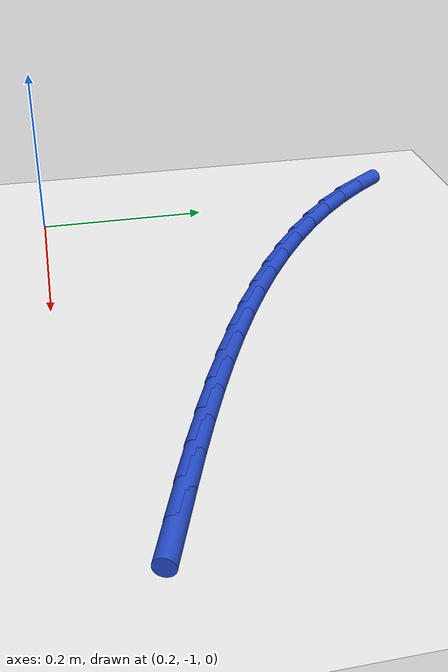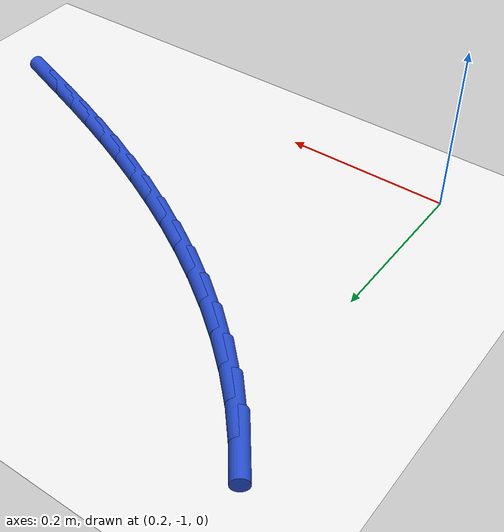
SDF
<sdf version="1.6">
 <world name="default">
  <model name="ground_plane">
   <static>1</static>
   <link name="link">
    <collision name="collision">
     <geometry><plane><normal>0 0 1</normal><size>100 100</size></plane></geometry>
     <surface><friction><ode><mu>100</mu><mu2>50</mu2></ode></friction></surface>
    </collision>
    <visual name="visual">
     <cast_shadows>0</cast_shadows>
     <geometry><plane><normal>0 0 1</normal><size>100 100</size></plane></geometry>
     <material>
      <script><uri>file://media/materials/scripts/gazebo.material</uri><name>Gazebo/WhiteGlow</name></script>
     </material>
    </visual>
   </link>
  </model>
  <model name="line">
   <link name="link_171">
    <pose>0.7386163495474699 -0.9179081848390297 0.01 0 1.57 -0.3561900177288039</pose>
    <collision name="collision">
     <geometry><cylinder><radius>0.01</radius><length>0.08</length></cylinder></geometry>
    </collision>
    <visual name="visual">
     <material>
      <script><name>Gazebo/Blue</name><uri>file://media/materials/scripts/gazebo.material</uri></script>
     </material>
     <geometry><cylinder><radius>0.01</radius><length>0.08</length></cylinder></geometry>
    </visual>
   </link>
   <link name="link_172">
    <pose>0.6992136978584467 -0.903248062521827 0.01 0 1.57 -0.36301224592770087</pose>
    <collision name="collision">
     <geometry><cylinder><radius>0.01</radius><length>0.08</length></cylinder></geometry>
    </collision>
    <visual name="visual">
     <material>
      <script><name>Gazebo/Blue</name><uri>file://media/materials/scripts/gazebo.material</uri></script>
     </material>
     <geometry><cylinder><radius>0.01</radius><length>0.08</length></cylinder></geometry>
    </visual>
   </link>
   <link name="link_173">
    <pose>0.6594850230434494 -0.8881572928912796 0.01 0 1.57 -0.37940273948285447</pose>
    <collision name="collision">
     <geometry><cylinder><radius>0.01</radius><length>0.08</length></cylinder></geometry>
    </collision>
    <visual name="visual">
     <material>
      <script><name>Gazebo/Blue</name><uri>file://media/materials/scripts/gazebo.material</uri></script>
     </material>
     <geometry><cylinder><radius>0.01</radius><length>0.08</length></cylinder></geometry>
    </visual>
   </link>
   <link name="link_174">
    <pose>0.6192859026107984 -0.8721290857341082 0.01 0 1.57 -0.3989350269945376</pose>
    <collision name="collision">
     <geometry><cylinder><radius>0.01</radius><length>0.08</length></cylinder></geometry>
    </collision>
    <visual name="visual">
     <material>
      <script><name>Gazebo/Blue</name><uri>file://media/materials/scripts/gazebo.material</uri></script>
     </material>
     <geometry><cylinder><radius>0.01</radius><length>0.08</length></cylinder></geometry>
    </visual>
   </link>
   <link name="link_175">
    <pose>0.5788399563995906 -0.8550795645854045 0.01 0 1.57 -0.421646008701253</pose>
    <collision name="collision">
     <geometry><cylinder><radius>0.01</radius><length>0.08</length></cylinder></geometry>
    </collision>
    <visual name="visual">
     <material>
      <script><name>Gazebo/Blue</name><uri>file://media/materials/scripts/gazebo.material</uri></script>
     </material>
     <geometry><cylinder><radius>0.01</radius><length>0.08</length></cylinder></geometry>
    </visual>
   </link>
   <link name="link_176">
    <pose>0.5383741495359913 -0.8369286970160555 0.01 0 1.57 -0.44768286511011907</pose>
    <collision name="collision">
     <geometry><cylinder><radius>0.01</radius><length>0.08</length></cylinder></geometry>
    </collision>
    <visual name="visual">
     <material>
      <script><name>Gazebo/Blue</name><uri>file://media/materials/scripts/gazebo.material</uri></script>
     </material>
     <geometry><cylinder><radius>0.01</radius><length>0.08</length></cylinder></geometry>
    </visual>
   </link>
   <link name="link_177">
    <pose>0.49811544714616657 -0.8175964505969496 0.01 0 1.57 -0.4772405753014033</pose>
    <collision name="collision">
     <geometry><cylinder><radius>0.01</radius><length>0.08</length></cylinder></geometry>
    </collision>
    <visual name="visual">
     <material>
      <script><name>Gazebo/Blue</name><uri>file://media/materials/scripts/gazebo.material</uri></script>
     </material>
     <geometry><cylinder><radius>0.01</radius><length>0.08</length></cylinder></geometry>
    </visual>
   </link>
   <link name="link_178">
    <pose>0.45829081435628194 -0.7970027928989735 0.01 0 1.57 -0.5105560901630586</pose>
    <collision name="collision">
     <geometry><cylinder><radius>0.01</radius><length>0.08</length></cylinder></geometry>
    </collision>
    <visual name="visual">
     <material>
      <script><name>Gazebo/Blue</name><uri>file://media/materials/scripts/gazebo.material</uri></script>
     </material>
     <geometry><cylinder><radius>0.01</radius><length>0.08</length></cylinder></geometry>
    </visual>
   </link>
   <link name="link_179">
    <pose>0.41912721629250316 -0.7750676914930147 0.01 0 1.57 -0.547901135817754</pose>
    <collision name="collision">
     <geometry><cylinder><radius>0.01</radius><length>0.08</length></cylinder></geometry>
    </collision>
    <visual name="visual">
     <material>
      <script><name>Gazebo/Blue</name><uri>file://media/materials/scripts/gazebo.material</uri></script>
     </material>
     <geometry><cylinder><radius>0.01</radius><length>0.08</length></cylinder></geometry>
    </visual>
   </link>
   <link name="link_180">
    <pose>0.380851618080996 -0.7517111139499605 0.01 0 1.57 -0.5895720494529466</pose>
    <collision name="collision">
     <geometry><cylinder><radius>0.01</radius><length>0.08</length></cylinder></geometry>
    </collision>
    <visual name="visual">
     <material>
      <script><name>Gazebo/Blue</name><uri>file://media/materials/scripts/gazebo.material</uri></script>
     </material>
     <geometry><cylinder><radius>0.01</radius><length>0.08</length></cylinder></geometry>
    </visual>
   </link>
   <link name="link_181">
    <pose>0.34369098484792626 -0.7268530278406986 0.01 0 1.57 -0.6358748008480568</pose>
    <collision name="collision">
     <geometry><cylinder><radius>0.01</radius><length>0.08</length></cylinder></geometry>
    </collision>
    <visual name="visual">
     <material>
      <script><name>Gazebo/Blue</name><uri>file://media/materials/scripts/gazebo.material</uri></script>
     </material>
     <geometry><cylinder><radius>0.01</radius><length>0.08</length></cylinder></geometry>
    </visual>
   </link>
   <link name="link_182">
    <pose>0.30787228171945946 -0.7004134007361162 0.01 0 1.57 -0.6871031665190062</pose>
    <collision name="collision">
     <geometry><cylinder><radius>0.01</radius><length>0.08</length></cylinder></geometry>
    </collision>
    <visual name="visual">
     <material>
      <script><name>Gazebo/Blue</name><uri>file://media/materials/scripts/gazebo.material</uri></script>
     </material>
     <geometry><cylinder><radius>0.01</radius><length>0.08</length></cylinder></geometry>
    </visual>
   </link>
   <link name="link_183">
    <pose>0.2736224738217615 -0.6723122002071009 0.01 0 1.57 -0.7435081210943151</pose>
    <collision name="collision">
     <geometry><cylinder><radius>0.01</radius><length>0.08</length></cylinder></geometry>
    </collision>
    <visual name="visual">
     <material>
      <script><name>Gazebo/Blue</name><uri>file://media/materials/scripts/gazebo.material</uri></script>
     </material>
     <geometry><cylinder><radius>0.01</radius><length>0.08</length></cylinder></geometry>
    </visual>
   </link>
   <link name="link_184">
    <pose>0.24116852628099814 -0.6424693938245398 0.01 0 1.57 -0.8052572376376905</pose>
    <collision name="collision">
     <geometry><cylinder><radius>0.01</radius><length>0.08</length></cylinder></geometry>
    </collision>
    <visual name="visual">
     <material>
      <script><name>Gazebo/Blue</name><uri>file://media/materials/scripts/gazebo.material</uri></script>
     </material>
     <geometry><cylinder><radius>0.01</radius><length>0.08</length></cylinder></geometry>
    </visual>
   </link>
   <link name="link_185">
    <pose>0.21073740422333506 -0.6108049491593208 0.01 0 1.57 -0.8723358452850422</pose>
    <collision name="collision">
     <geometry><cylinder><radius>0.01</radius><length>0.08</length></cylinder></geometry>
    </collision>
    <visual name="visual">
     <material>
      <script><name>Gazebo/Blue</name><uri>file://media/materials/scripts/gazebo.material</uri></script>
     </material>
     <geometry><cylinder><radius>0.01</radius><length>0.08</length></cylinder></geometry>
    </visual>
   </link>
   <link name="link_186">
    <pose>0.1825545499833344 -0.5772403488184299 0.01 0 1.57 -0.9410779689094377</pose>
    <collision name="collision">
     <geometry><cylinder><radius>0.01</radius><length>0.08</length></cylinder></geometry>
    </collision>
    <visual name="visual">
     <material>
      <script><name>Gazebo/Blue</name><uri>file://media/materials/scripts/gazebo.material</uri></script>
     </material>
     <geometry><cylinder><radius>0.01</radius><length>0.08</length></cylinder></geometry>
    </visual>
   </link>
  </model>
 </world>
</sdf>
